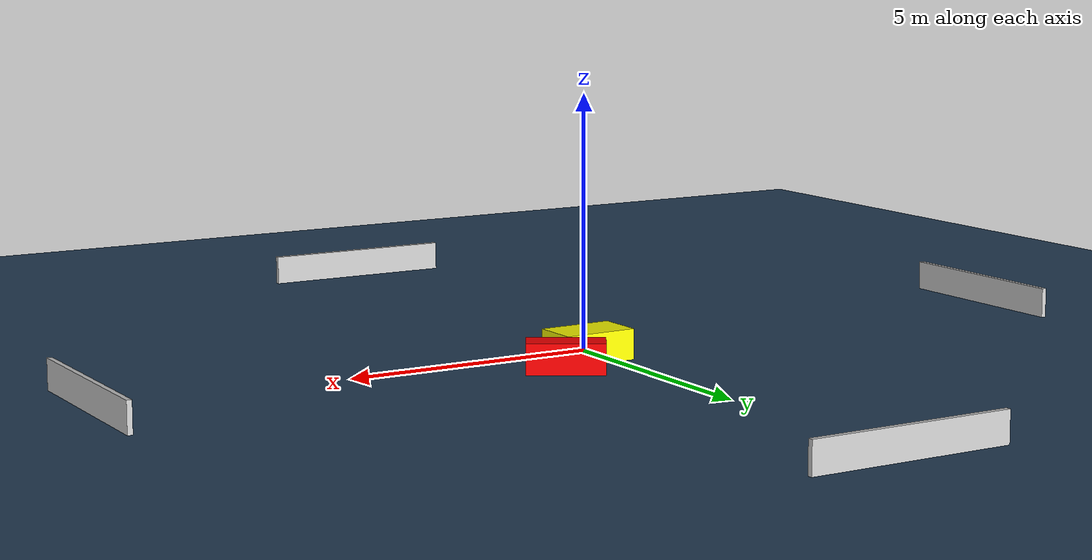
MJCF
<?xml version="1.0" ?>
<mujoco model="generated_environment">
  <option timestep="0.01" integrator="RK4" cone="elliptic"/>
  <default>
    <geom density="1"/>
  </default>
  <asset>
    <texture builtin="gradient" height="3072" name="skybox" rgb1="0.3 0.5 0.7" rgb2="0 0 0" type="skybox" width="512"/>
    <texture builtin="checker" height="300" name="groundplane" rgb1="0.2 0.3 0.4" rgb2="0.1 0.2 0.3" type="2d" width="300"/>
    <material name="groundplane" reflectance="0.2" texrepeat="5 5" texture="groundplane"/>
  </asset>
  <worldbody>
    <light dir="0 0 -1" directional="true" pos="0 0 1.5"/>
    <geom condim="3" friction="0.5 0.005 0.001" material="groundplane" name="floor" pos="0 0 0" size="0 0 0.05" type="plane"/>
    <body name="walls">
      <geom name="wall_1" condim="4" pos="-10.0 0.0 0.3" rgba="0.800000011920929 0.800000011920929 0.800000011920929 1.0" size="0.05 2.0 0.3" type="box"/>
      <geom name="wall_2" condim="4" pos="10.0 0.0 0.3" rgba="0.800000011920929 0.800000011920929 0.800000011920929 1.0" size="0.05 2.0 0.3" type="box"/>
      <geom name="wall_3" condim="4" pos="0.0 -10.0 0.3" rgba="0.800000011920929 0.800000011920929 0.800000011920929 1.0" size="2.0 0.05 0.3" type="box"/>
      <geom name="wall_4" condim="4" pos="0.0 10.0 0.3" rgba="0.800000011920929 0.800000011920929 0.800000011920929 1.0" size="2.0 0.05 0.3" type="box"/>
    </body>
    <body name="robot">
      <joint name="joint_x" type="slide" pos="0 0 0" axis="1 0 0"/>
      <joint name="joint_y" type="slide" pos="0 0 0" axis="0 1 0"/>
      <geom name="robot" type="cylinder" pos="0.0 0.0 0.2" size="0.2 0.2 0.0" mass="5.0" friction="1.0 0.005 0.0001" condim="4" rgba="1.0 1.0 0.0 1.0"/>
    </body>
    <body name="obstacle_1_movable">
      <geom name="obstacle_1_movable" condim="4" pos="0.36110859600887846 0.7448527067366507 0.3" euler="0 0 181.41203662659902" friction="0.0 0.005 0.001" rgba="1.0 1.0 0.0 1.0" size="0.7397986872602202 0.4619411419614248 0.3" type="box" mass="0.1"/>
      <joint type="free"/>
    </body>
    <body name="obstacle_2_static">
      <geom name="obstacle_2_static" condim="4" pos="1.3052063195292638 1.5050167518456048 0.3" euler="0 0 239.57031682096795" friction="0.0 0.005 0.001" rgba="1.0 0.0 0.0 1.0" size="0.3087084665757337 0.7470303404643235 0.3" type="box"/>
    </body>
  </worldbody>
  <actuator>
    <motor name="actuator_x" joint="joint_x" gear="1" ctrlrange="-1 1"/>
    <motor name="actuator_y" joint="joint_y" gear="1" ctrlrange="-1 1"/>
  </actuator>
</mujoco>
